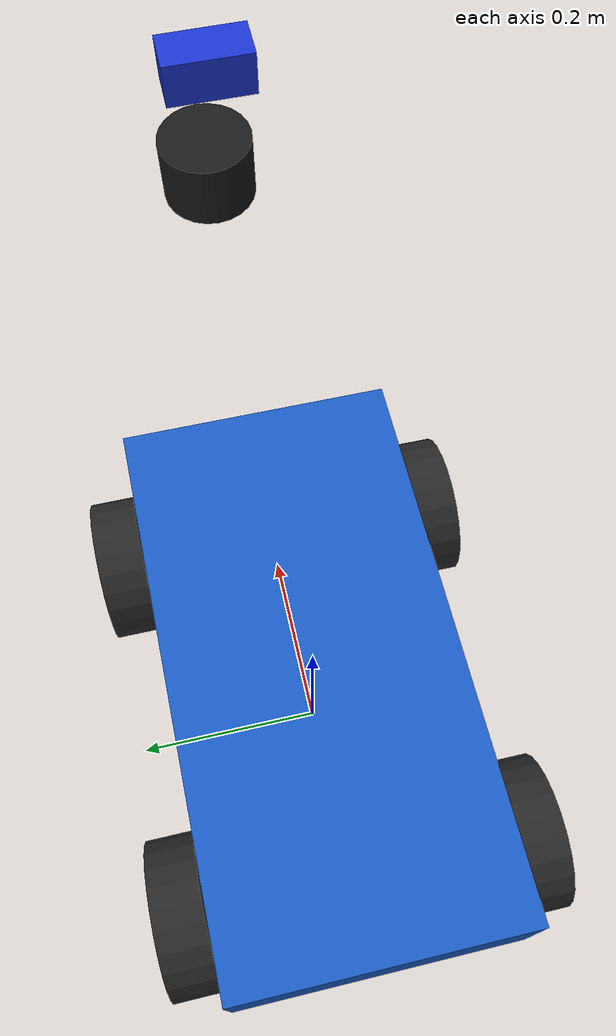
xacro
<?xml version="1.0"?>
<robot name="auto_vehicle" xmlns:xacro="http://www.ros.org/wiki/xacro">

  <!-- 바퀴 공통 매크로 파일 포함 (상대 경로) -->
  <xacro:include filename="wheel_macro.xacro"/>
  <xacro:include filename="vehicle_sensors.xacro"/>
  <!-- 1. 주요 제원 상수(Properties) 정의         -->
  <!-- 차체(Chassis) 치수 및 질량 -->
  <xacro:property name="chassis_length"    value="0.60"/> <!-- 전장 (Length): 60cm -->
  <xacro:property name="chassis_width"     value="0.30"/> <!-- 전폭 (Width): 30cm -->
  <xacro:property name="chassis_height"    value="0.12"/> <!-- 전고 (Height): 12cm -->
  <xacro:property name="chassis_mass"      value="8.00"/> <!-- 차체 질량: 8kg -->

  <!-- 바퀴(Wheel) 치수 및 질량 -->
  <xacro:property name="wheel_radius"      value="0.08"/> <!-- 반지름: 8cm (지름 16cm) -->
  <xacro:property name="wheel_width"       value="0.05"/> <!-- 폭: 5cm -->
  <xacro:property name="wheel_mass"        value="1.20"/> <!-- 바퀴 개당 질량: 1.2kg -->

  <!-- 기구학적 배치 치수 -->
  <xacro:property name="wheel_base"        value="0.40"/> <!-- 축거 (앞뒤 바퀴 축간 거리): 40cm -->
  <xacro:property name="wheel_track"       value="0.36"/> <!-- 윤거 (좌우 바퀴 중심 거리): 36cm -->
  <xacro:property name="max_steer_angle"   value="0.52"/> <!-- 최대 조향각: 약 30도 (0.52 rad) -->

  <!--
    [매크로] 직육면체(Box) 관성 모멘트 계산
    - Ixx = (1/12) * m * (y^2 + z^2)
    - Iyy = (1/12) * m * (x^2 + z^2)
    - Izz = (1/12) * m * (x^2 + y^2)
  -->
  <xacro:macro name="box_inertia" params="m x y z">
    <inertial>
      <mass value="${m}"/>
      <!-- 박스 중심에 질량 중심(CoM)이 위치하도록 z 오프셋 지정 -->
      <origin xyz="0 0 ${z/2.0}" rpy="0 0 0"/>
      <inertia ixx="${(m / 12.0) * (y*y + z*z)}" ixy="0.0" ixz="0.0"
               iyy="${(m / 12.0) * (x*x + z*z)}" iyz="0.0"
               izz="${(m / 12.0) * (x*x + y*y)}"/>
    </inertial>
  </xacro:macro>

  <!-- 2. 지면 기준 좌표계 (base_footprint)       -->
  <!--
    base_footprint는 로봇이 위치한 지면 바로 위(z=0)에 위치하는 가상 링크입니다.
    내비게이션(Nav2) 및 SLAM에서 로봇의 2D 평면 위치 기준으로 매우 중요합니다.
  -->
  <link name="base_footprint"/>

  <!-- 3. 차체 섀시 (base_link)                  -->
  <link name="base_link">
    <!-- 3D 그래픽 외형 -->
    <visual>
      <origin xyz="0 0 ${chassis_height/2.0}" rpy="0 0 0"/>
      <geometry>
        <box size="${chassis_length} ${chassis_width} ${chassis_height}"/>
      </geometry>
      <material name="deep_blue">
        <color rgba="0.1 0.35 0.75 1.0"/>
      </material>
    </visual>

    <!-- 물리 충돌 영역 -->
    <collision>
      <origin xyz="0 0 ${chassis_height/2.0}" rpy="0 0 0"/>
      <geometry>
        <box size="${chassis_length} ${chassis_width} ${chassis_height}"/>
      </geometry>
    </collision>

    <!-- 차체 물리 관성 -->
    <xacro:box_inertia m="${chassis_mass}" x="${chassis_length}" y="${chassis_width}" z="${chassis_height}"/>
  </link>

  <!-- base_footprint와 base_link 결합 (고정 관절) -->
  <joint name="base_footprint_joint" type="fixed">
    <parent link="base_footprint"/>
    <child link="base_link"/>
    <!-- 바퀴 반지름(wheel_radius)만큼 섀시를 지면에서 들어올립니다 -->
    <origin xyz="0 0 ${wheel_radius}" rpy="0 0 0"/>
  </joint>

  <!-- 4. 4개 바퀴 결합 (매크로 호출)             -->

  <!-- [전륜 좌측 바퀴] 조향 너클 + 구동 휠 -->
  <xacro:steer_wheel
    prefix="front_left"
    parent="base_link"
    x_reflect="1"
    y_reflect="1"
    wheel_radius="${wheel_radius}"
    wheel_width="${wheel_width}"
    wheel_mass="${wheel_mass}"
    wheel_track="${wheel_track}"
    wheel_base="${wheel_base}"
    max_steer_angle="${max_steer_angle}"/>

  <!-- [전륜 우측 바퀴] 조향 너클 + 구동 휠 -->
  <xacro:steer_wheel
    prefix="front_right"
    parent="base_link"
    x_reflect="1"
    y_reflect="-1"
    wheel_radius="${wheel_radius}"
    wheel_width="${wheel_width}"
    wheel_mass="${wheel_mass}"
    wheel_track="${wheel_track}"
    wheel_base="${wheel_base}"
    max_steer_angle="${max_steer_angle}"/>

  <!-- [후륜 좌측 바퀴] 고정축 연속 회전 휠 -->
  <xacro:drive_wheel
    prefix="rear_left"
    parent="base_link"
    x_reflect="-1"
    y_reflect="1"
    wheel_radius="${wheel_radius}"
    wheel_width="${wheel_width}"
    wheel_mass="${wheel_mass}"
    wheel_track="${wheel_track}"
    wheel_base="${wheel_base}"/>

  <!-- [후륜 우측 바퀴] 고정축 연속 회전 휠 -->
  <xacro:drive_wheel
    prefix="rear_right"
    parent="base_link"
    x_reflect="-1"
    y_reflect="-1"
    wheel_radius="${wheel_radius}"
    wheel_width="${wheel_width}"
    wheel_mass="${wheel_mass}"
    wheel_track="${wheel_track}"
    wheel_base="${wheel_base}"/>

  <!-- 5. [4주차] Gazebo Sim 플러그인 (실습 4단계) -->
  <gazebo>
    <plugin filename="gz-sim-diff-drive-system"
            name="gz::sim::systems::DiffDrive">
      <left_joint>rear_left_wheel_joint</left_joint>
      <right_joint>rear_right_wheel_joint</right_joint>
      <wheel_separation>${wheel_track}</wheel_separation>
      <wheel_radius>${wheel_radius}</wheel_radius>
      <topic>/cmd_vel</topic>
      <odom_topic>/odom</odom_topic>
      <tf_topic>/tf</tf_topic>
      <frame_id>odom</frame_id>
      <child_frame_id>base_footprint</child_frame_id>
      <odom_publish_frequency>50</odom_publish_frequency>
      <max_linear_acceleration>2.0</max_linear_acceleration>
      <min_linear_acceleration>-2.0</min_linear_acceleration>
      <max_angular_acceleration>3.0</max_angular_acceleration>
      <min_angular_acceleration>-3.0</min_angular_acceleration>
    </plugin>

    <plugin filename="gz-sim-joint-state-publisher-system"
            name="gz::sim::systems::JointStatePublisher">
    </plugin>
  </gazebo>

</robot>

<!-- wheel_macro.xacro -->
<robot xmlns:xacro="http://www.ros.org/wiki/xacro">

  <xacro:macro name="cylinder_inertia" params="m r h">
    <inertial>
      <mass value="${m}"/>
      <origin xyz="0 0 0" rpy="0 0 0"/>
      <inertia ixx="${(m / 12.0) * (3.0 * r * r + h * h)}" ixy="0.0" ixz="0.0"
               iyy="${(m / 12.0) * (3.0 * r * r + h * h)}" iyz="0.0"
               izz="${(m / 2.0) * (r * r)}"/>
    </inertial>
  </xacro:macro>

  <xacro:macro name="drive_wheel" params="prefix parent x_reflect y_reflect wheel_radius wheel_width wheel_mass wheel_track wheel_base">

    <!-- 1. 바퀴 링크 (강체) 정의 -->
    <link name="${prefix}_wheel_link">
      <!-- 눈에 보이는 3D 시각적 외형 -->
      <visual>
        <origin xyz="0 0 0" rpy="${pi/2.0} 0 0"/>
        <geometry>
          <cylinder radius="${wheel_radius}" length="${wheel_width}"/>
        </geometry>
        <material name="tire_black">
          <color rgba="0.15 0.15 0.15 1.0"/>
        </material>
      </visual>

      <!-- 물리 엔진이 충돌을 계산하는 기하 형상 -->
      <collision>
        <origin xyz="0 0 0" rpy="${pi/2.0} 0 0"/>
        <geometry>
          <cylinder radius="${wheel_radius}" length="${wheel_width}"/>
        </geometry>
      </collision>

      <!-- 관성 모멘트 매크로 호출 -->
      <xacro:cylinder_inertia m="${wheel_mass}" r="${wheel_radius}" h="${wheel_width}"/>
    </link>

    <!-- 2. 차체와 바퀴를 연결하는 관절 (continuous 타입: 무제한 회전) -->
    <joint name="${prefix}_wheel_joint" type="continuous">
      <parent link="${parent}"/>
      <child link="${prefix}_wheel_link"/>
      <!--
        부모 링크(base_link) 중심으로부터 바퀴 중심 위치까지의 오프셋
        x = x_reflect * (축거 / 2)
        y = y_reflect * (윤거 / 2)
        z = 0 (섀시 높이에 맞춤)
      -->
      <origin xyz="${x_reflect * wheel_base / 2.0} ${y_reflect * wheel_track / 2.0} 0" rpy="0 0 0"/>
      <!-- 바퀴 회전축은 차량 좌우 방향인 Y축(0 1 0)입니다 -->
      <axis xyz="0 1 0"/>
    </joint>

    <!-- 3. [4주차] Gazebo 바퀴-지면 마찰계수 (없으면 바퀴가 헛돌고 차가 안 나감 - 실습 10단계 체크리스트 1번) -->
    <gazebo reference="${prefix}_wheel_link">
      <mu1>1.0</mu1>
      <mu2>1.0</mu2>
    </gazebo>

  </xacro:macro>

  <xacro:macro name="steer_wheel" params="prefix parent x_reflect y_reflect wheel_radius wheel_width wheel_mass wheel_track wheel_base max_steer_angle">

    <!-- 1. 조향 너클(Steering Knuckle) 링크 (방향 전환을 위한 중간 링크) -->
    <link name="${prefix}_steer_link">
      <inertial>
        <!-- 조향 기구의 가상 경량 질량 할당 -->
        <mass value="0.15"/>
        <origin xyz="0 0 0" rpy="0 0 0"/>
        <inertia ixx="0.0002" ixy="0.0" ixz="0.0"
                 iyy="0.0002" iyz="0.0"
                 izz="0.0002"/>
      </inertial>
    </link>

    <!-- 2. 조향 관절: Z축(수직)을 중심으로 좌우로만 회전하는 revolute 관절 -->
    <joint name="${prefix}_steer_joint" type="revolute">
      <parent link="${parent}"/>
      <child link="${prefix}_steer_link"/>
      <origin xyz="${x_reflect * wheel_base / 2.0} ${y_reflect * wheel_track / 2.0} 0" rpy="0 0 0"/>
      <!-- 수직 회전축: Z축(0 0 1) -->
      <axis xyz="0 0 1"/>
      <!-- 조향각 한계: [-max_steer_angle, +max_steer_angle] (라디안 단위) -->
      <limit lower="${-max_steer_angle}" upper="${max_steer_angle}" effort="15.0" velocity="2.0"/>
      <!-- [4주차] Gazebo에서 조향 관절을 제어하는 노드가 없으므로 감쇠를 주어 전륜이 흔들리지 않게 함 -->
      <dynamics damping="1.0"/>
    </joint>

    <!-- 3. 실제 굴러가는 바퀴 링크 -->
    <link name="${prefix}_wheel_link">
      <visual>
        <origin xyz="0 0 0" rpy="${pi/2.0} 0 0"/>
        <geometry>
          <cylinder radius="${wheel_radius}" length="${wheel_width}"/>
        </geometry>
        <material name="tire_black">
          <color rgba="0.15 0.15 0.15 1.0"/>
        </material>
      </visual>

      <collision>
        <origin xyz="0 0 0" rpy="${pi/2.0} 0 0"/>
        <geometry>
          <cylinder radius="${wheel_radius}" length="${wheel_width}"/>
        </geometry>
      </collision>

      <xacro:cylinder_inertia m="${wheel_mass}" r="${wheel_radius}" h="${wheel_width}"/>
    </link>

    <!-- 4. 바퀴 회전 관절: 조향 너클 링크에 결합되어 Y축으로 굴러가는 continuous 관절 -->
    <joint name="${prefix}_wheel_joint" type="continuous">
      <parent link="${prefix}_steer_link"/>
      <child link="${prefix}_wheel_link"/>
      <origin xyz="0 0 0" rpy="0 0 0"/>
      <!-- 바퀴 회전축: Y축(0 1 0) -->
      <axis xyz="0 1 0"/>
    </joint>

  </xacro:macro>

</robot>

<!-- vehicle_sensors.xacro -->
<robot xmlns:xacro="http://www.ros.org/wiki/xacro" name="vehicle_sensors">

  <!-- 1. 2D LiDAR 센서 (lidar_link)                                              -->
  <link name="lidar_link">
    <visual>
      <origin xyz="0 0 0" rpy="0 0 0"/>
      <geometry>
        <cylinder radius="0.05" length="0.07"/>
      </geometry>
      <material name="lidar_black">
        <color rgba="0.1 0.1 0.1 1.0"/>
      </material>
    </visual>
    <collision>
      <origin xyz="0 0 0" rpy="0 0 0"/>
      <geometry>
        <cylinder radius="0.05" length="0.07"/>
      </geometry>
    </collision>
    <inertial>
      <mass value="0.2"/>
      <origin xyz="0 0 0" rpy="0 0 0"/>
      <inertia ixx="0.0002" ixy="0" ixz="0" iyy="0.0002" iyz="0" izz="0.00025"/>
    </inertial>
  </link>

  <joint name="lidar_joint" type="fixed">
    <parent link="base_link"/>
    <child link="lidar_link"/>
    <!-- 차량 중심 기준 전방 0.5m, 상방 0.3m 위치 -->
    <origin xyz="0.5 0.0 0.3" rpy="0 0 0"/>
  </joint>

  <!-- Gazebo Sim GPU LiDAR 센서 플러그인 -->
  <gazebo reference="lidar_link">
    <sensor name="gpu_lidar" type="gpu_lidar">
      <pose>0 0 0 0 0 0</pose>
      <topic>/scan</topic>
      <update_rate>10</update_rate>
      <ray>
        <scan>
          <horizontal>
            <samples>360</samples>
            <resolution>1</resolution>
            <min_angle>-3.14159265</min_angle>
            <max_angle>3.14159265</max_angle>
          </horizontal>
        </scan>
        <range>
          <min>0.15</min>
          <max>20.0</max>
          <resolution>0.01</resolution>
        </range>
      </ray>
      <always_on>true</always_on>
      <visualize>true</visualize>
    </sensor>
  </gazebo>

  <!-- 2. RGB 전방 카메라 센서 (camera_link)                                      -->
  <link name="camera_link">
    <visual>
      <origin xyz="0 0 0" rpy="0 0 0"/>
      <geometry>
        <box size="0.04 0.08 0.04"/>
      </geometry>
      <material name="camera_blue">
        <color rgba="0.1 0.2 0.8 1.0"/>
      </material>
    </visual>
    <collision>
      <origin xyz="0 0 0" rpy="0 0 0"/>
      <geometry>
        <box size="0.04 0.08 0.04"/>
      </geometry>
    </collision>
    <inertial>
      <mass value="0.1"/>
      <origin xyz="0 0 0" rpy="0 0 0"/>
      <inertia ixx="0.0001" ixy="0" ixz="0" iyy="0.0001" iyz="0" izz="0.0001"/>
    </inertial>
  </link>

  <joint name="camera_joint" type="fixed">
    <parent link="base_link"/>
    <child link="camera_link"/>
    <!-- 차량 중심 기준 전방 0.4m, 상방 0.5m 위치 (루프 전방) -->
    <origin xyz="0.4 0.0 0.5" rpy="0 0 0"/>
  </joint>

  <!-- Gazebo Sim 카메라 센서 플러그인 -->
  <gazebo reference="camera_link">
    <sensor name="camera" type="camera">
      <pose>0 0 0 0 0 0</pose>
      <topic>/camera/image_raw</topic>
      <update_rate>30</update_rate>
      <camera>
        <horizontal_fov>1.3962634</horizontal_fov> <!-- 약 80도 시야각(FOV) -->
        <image>
          <width>640</width>
          <height>480</height>
          <format>R8G8B8</format>
        </image>
        <clip>
          <near>0.1</near>
          <far>100.0</far>
        </clip>
      </camera>
      <always_on>true</always_on>
      <visualize>false</visualize>
    </sensor>
  </gazebo>

  <!-- 3. IMU 관성측정 센서 (imu_link)                                            -->
  <link name="imu_link">
    <visual>
      <origin xyz="0 0 0" rpy="0 0 0"/>
      <geometry>
        <box size="0.02 0.02 0.01"/>
      </geometry>
      <material name="imu_red">
        <color rgba="0.9 0.1 0.1 1.0"/>
      </material>
    </visual>
  </link>

  <joint name="imu_joint" type="fixed">
    <parent link="base_link"/>
    <child link="imu_link"/>
    <!-- 차량 무게 중심 근처 (상방 0.1m) -->
    <origin xyz="0.0 0.0 0.1" rpy="0 0 0"/>
  </joint>

  <!-- Gazebo Sim IMU 센서 플러그인 -->
  <gazebo reference="imu_link">
    <sensor name="imu" type="imu">
      <pose>0 0 0 0 0 0</pose>
      <topic>/imu/data</topic>
      <update_rate>50</update_rate>
      <always_on>true</always_on>
      <visualize>false</visualize>
    </sensor>
  </gazebo>

</robot>
